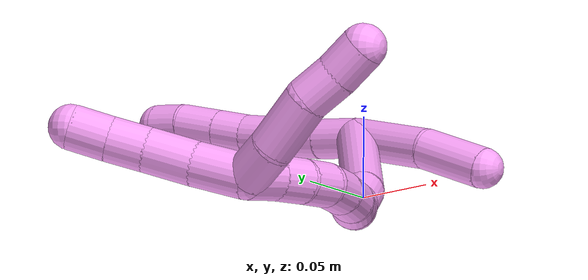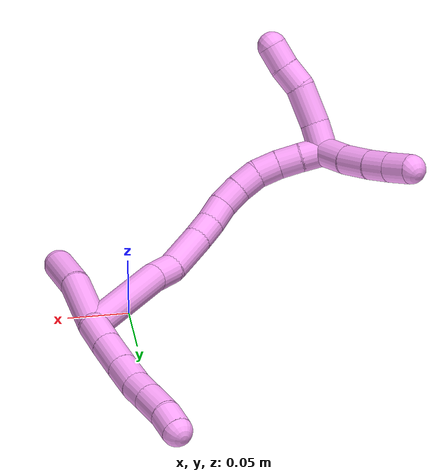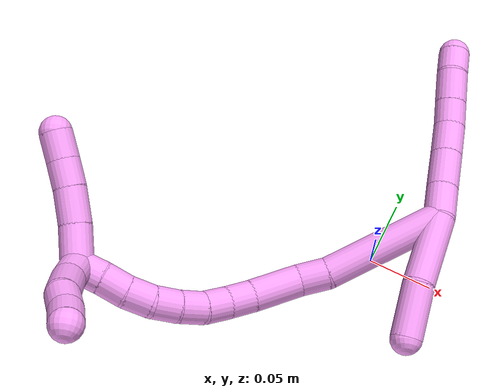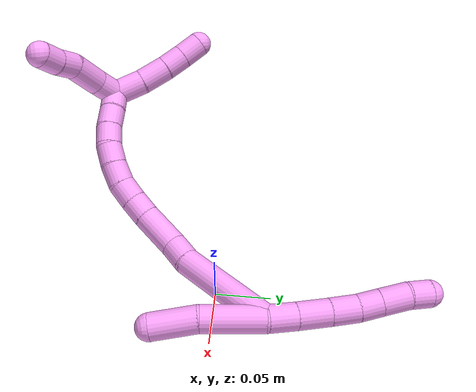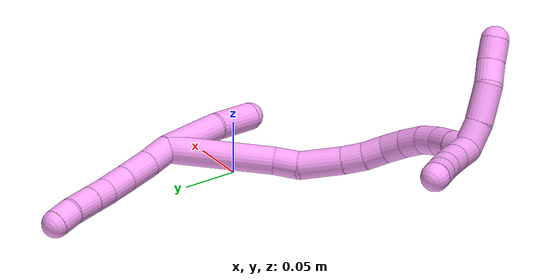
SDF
<sdf version="1.7">
 <world name="default">
  <model name="4">
   <static>0</static>
   <link name="4">
    <collision name="collision-cylinder-e_1_2_8">
     <pose>0.000839 -0.000675 -0.013159 3.09035 0.063578 1.78499</pose>
     <geometry><cylinder><radius>0.0125</radius><length>0.026406</length></cylinder></geometry>
     <surface>
      <friction><ode><mu>1.16</mu><mu2>1.16</mu2><slip1>0</slip1><slip2>0</slip2></ode></friction>
      <contact><ode><kp>1e+06</kp><kd>1</kd><max_vel>0</max_vel><min_depth>0.001</min_depth></ode></contact>
     </surface>
    </collision>
    <visual name="visual-cylinder-e_1_2_8">
     <pose>0.000839 -0.000675 -0.013159 3.09035 0.063578 1.78499</pose>
     <geometry><cylinder><radius>0.0125</radius><length>0.026406</length></cylinder></geometry>
     <material><ambient>1 0.65098 0.996078 1</ambient></material>
    </visual>
    <collision name="collision-cylinder-e_2_8_9">
     <pose>0.00262 -0.001111 -0.041435 -3.12583 0.062253 -2.64575</pose>
     <geometry><cylinder><radius>0.0125</radius><length>0.030296</length></cylinder></geometry>
     <surface>
      <friction><ode><mu>1.16</mu><mu2>1.16</mu2><slip1>0</slip1><slip2>0</slip2></ode></friction>
      <contact><ode><kp>1e+06</kp><kd>1</kd><max_vel>0</max_vel><min_depth>0.001</min_depth></ode></contact>
     </surface>
    </collision>
    <visual name="visual-cylinder-e_2_8_9">
     <pose>0.00262 -0.001111 -0.041435 -3.12583 0.062253 -2.64575</pose>
     <geometry><cylinder><radius>0.0125</radius><length>0.030296</length></cylinder></geometry>
     <material><ambient>1 0.65098 0.996078 1</ambient></material>
    </visual>
    <collision name="collision-cylinder-e_3_9_10">
     <pose>0.004202 -0.000444 -0.069417 -3.10823 0.049647 -1.95819</pose>
     <geometry><cylinder><radius>0.0125</radius><length>0.025776</length></cylinder></geometry>
     <surface>
      <friction><ode><mu>1.16</mu><mu2>1.16</mu2><slip1>0</slip1><slip2>0</slip2></ode></friction>
      <contact><ode><kp>1e+06</kp><kd>1</kd><max_vel>0</max_vel><min_depth>0.001</min_depth></ode></contact>
     </surface>
    </collision>
    <visual name="visual-cylinder-e_3_9_10">
     <pose>0.004202 -0.000444 -0.069417 -3.10823 0.049647 -1.95819</pose>
     <geometry><cylinder><radius>0.0125</radius><length>0.025776</length></cylinder></geometry>
     <material><ambient>1 0.65098 0.996078 1</ambient></material>
    </visual>
    <collision name="collision-cylinder-e_4_10_11">
     <pose>0.004599 0.001296 -0.092543 -3.01463 -0.023426 0.364447</pose>
     <geometry><cylinder><radius>0.0125</radius><length>0.020695</length></cylinder></geometry>
     <surface>
      <friction><ode><mu>1.16</mu><mu2>1.16</mu2><slip1>0</slip1><slip2>0</slip2></ode></friction>
      <contact><ode><kp>1e+06</kp><kd>1</kd><max_vel>0</max_vel><min_depth>0.001</min_depth></ode></contact>
     </surface>
    </collision>
    <visual name="visual-cylinder-e_4_10_11">
     <pose>0.004599 0.001296 -0.092543 -3.01463 -0.023426 0.364447</pose>
     <geometry><cylinder><radius>0.0125</radius><length>0.020695</length></cylinder></geometry>
     <material><ambient>1 0.65098 0.996078 1</ambient></material>
    </visual>
    <collision name="collision-cylinder-e_5_11_12">
     <pose>0.004103 0.004234 -0.11602 -3.01898 -0.019093 0.308589</pose>
     <geometry><cylinder><radius>0.0125</radius><length>0.026635</length></cylinder></geometry>
     <surface>
      <friction><ode><mu>1.16</mu><mu2>1.16</mu2><slip1>0</slip1><slip2>0</slip2></ode></friction>
      <contact><ode><kp>1e+06</kp><kd>1</kd><max_vel>0</max_vel><min_depth>0.001</min_depth></ode></contact>
     </surface>
    </collision>
    <visual name="visual-cylinder-e_5_11_12">
     <pose>0.004103 0.004234 -0.11602 -3.01898 -0.019093 0.308589</pose>
     <geometry><cylinder><radius>0.0125</radius><length>0.026635</length></cylinder></geometry>
     <material><ambient>1 0.65098 0.996078 1</ambient></material>
    </visual>
    <collision name="collision-cylinder-e_6_12_6">
     <pose>0.004415 0.005387 -0.139304 3.0944 0.056114 1.74323</pose>
     <geometry><cylinder><radius>0.0125</radius><length>0.020191</length></cylinder></geometry>
     <surface>
      <friction><ode><mu>1.16</mu><mu2>1.16</mu2><slip1>0</slip1><slip2>0</slip2></ode></friction>
      <contact><ode><kp>1e+06</kp><kd>1</kd><max_vel>0</max_vel><min_depth>0.001</min_depth></ode></contact>
     </surface>
    </collision>
    <visual name="visual-cylinder-e_6_12_6">
     <pose>0.004415 0.005387 -0.139304 3.0944 0.056114 1.74323</pose>
     <geometry><cylinder><radius>0.0125</radius><length>0.020191</length></cylinder></geometry>
     <material><ambient>1 0.65098 0.996078 1</ambient></material>
    </visual>
    <collision name="collision-cylinder-e_1_2_13">
     <pose>-0.006178 -0.002168 0.027925 0.077489 -0.217082 -0.008448</pose>
     <geometry><cylinder><radius>0.0125</radius><length>0.057365</length></cylinder></geometry>
     <surface>
      <friction><ode><mu>1.16</mu><mu2>1.16</mu2><slip1>0</slip1><slip2>0</slip2></ode></friction>
      <contact><ode><kp>1e+06</kp><kd>1</kd><max_vel>0</max_vel><min_depth>0.001</min_depth></ode></contact>
     </surface>
    </collision>
    <visual name="visual-cylinder-e_1_2_13">
     <pose>-0.006178 -0.002168 0.027925 0.077489 -0.217082 -0.008448</pose>
     <geometry><cylinder><radius>0.0125</radius><length>0.057365</length></cylinder></geometry>
     <material><ambient>1 0.65098 0.996078 1</ambient></material>
    </visual>
    <collision name="collision-cylinder-e_2_13_5">
     <pose>-0.014764 -0.009375 0.076424 0.240164 -0.113231 -0.013677</pose>
     <geometry><cylinder><radius>0.0125</radius><length>0.042635</length></cylinder></geometry>
     <surface>
      <friction><ode><mu>1.16</mu><mu2>1.16</mu2><slip1>0</slip1><slip2>0</slip2></ode></friction>
      <contact><ode><kp>1e+06</kp><kd>1</kd><max_vel>0</max_vel><min_depth>0.001</min_depth></ode></contact>
     </surface>
    </collision>
    <visual name="visual-cylinder-e_2_13_5">
     <pose>-0.014764 -0.009375 0.076424 0.240164 -0.113231 -0.013677</pose>
     <geometry><cylinder><radius>0.0125</radius><length>0.042635</length></cylinder></geometry>
     <material><ambient>1 0.65098 0.996078 1</ambient></material>
    </visual>
    <collision name="collision-cylinder-e_1_2_14">
     <pose>-0.039347 -0.012198 0.024921 0.455181 -0.956617 -0.239011</pose>
     <geometry><cylinder><radius>0.0125</radius><length>0.096292</length></cylinder></geometry>
     <surface>
      <friction><ode><mu>1.16</mu><mu2>1.16</mu2><slip1>0</slip1><slip2>0</slip2></ode></friction>
      <contact><ode><kp>1e+06</kp><kd>1</kd><max_vel>0</max_vel><min_depth>0.001</min_depth></ode></contact>
     </surface>
    </collision>
    <visual name="visual-cylinder-e_1_2_14">
     <pose>-0.039347 -0.012198 0.024921 0.455181 -0.956617 -0.239011</pose>
     <geometry><cylinder><radius>0.0125</radius><length>0.096292</length></cylinder></geometry>
     <material><ambient>1 0.65098 0.996078 1</ambient></material>
    </visual>
    <collision name="collision-cylinder-e_2_14_15">
     <pose>-0.089263 -0.026925 0.053614 0.590672 -1.16495 -0.395564</pose>
     <geometry><cylinder><radius>0.0125</radius><length>0.023006</length></cylinder></geometry>
     <surface>
      <friction><ode><mu>1.16</mu><mu2>1.16</mu2><slip1>0</slip1><slip2>0</slip2></ode></friction>
      <contact><ode><kp>1e+06</kp><kd>1</kd><max_vel>0</max_vel><min_depth>0.001</min_depth></ode></contact>
     </surface>
    </collision>
    <visual name="visual-cylinder-e_2_14_15">
     <pose>-0.089263 -0.026925 0.053614 0.590672 -1.16495 -0.395564</pose>
     <geometry><cylinder><radius>0.0125</radius><length>0.023006</length></cylinder></geometry>
     <material><ambient>1 0.65098 0.996078 1</ambient></material>
    </visual>
    <collision name="collision-cylinder-e_3_15_16">
     <pose>-0.117175 -0.028874 0.067022 -0.060093 -1.06289 0.035333</pose>
     <geometry><cylinder><radius>0.0125</radius><length>0.039698</length></cylinder></geometry>
     <surface>
      <friction><ode><mu>1.16</mu><mu2>1.16</mu2><slip1>0</slip1><slip2>0</slip2></ode></friction>
      <contact><ode><kp>1e+06</kp><kd>1</kd><max_vel>0</max_vel><min_depth>0.001</min_depth></ode></contact>
     </surface>
    </collision>
    <visual name="visual-cylinder-e_3_15_16">
     <pose>-0.117175 -0.028874 0.067022 -0.060093 -1.06289 0.035333</pose>
     <geometry><cylinder><radius>0.0125</radius><length>0.039698</length></cylinder></geometry>
     <material><ambient>1 0.65098 0.996078 1</ambient></material>
    </visual>
    <collision name="collision-cylinder-e_4_16_17">
     <pose>-0.143527 -0.027042 0.081375 -0.259625 -1.07431 0.155187</pose>
     <geometry><cylinder><radius>0.0125</radius><length>0.020492</length></cylinder></geometry>
     <surface>
      <friction><ode><mu>1.16</mu><mu2>1.16</mu2><slip1>0</slip1><slip2>0</slip2></ode></friction>
      <contact><ode><kp>1e+06</kp><kd>1</kd><max_vel>0</max_vel><min_depth>0.001</min_depth></ode></contact>
     </surface>
    </collision>
    <visual name="visual-cylinder-e_4_16_17">
     <pose>-0.143527 -0.027042 0.081375 -0.259625 -1.07431 0.155187</pose>
     <geometry><cylinder><radius>0.0125</radius><length>0.020492</length></cylinder></geometry>
     <material><ambient>1 0.65098 0.996078 1</ambient></material>
    </visual>
    <collision name="collision-cylinder-e_5_17_18">
     <pose>-0.161082 -0.023076 0.090625 -0.539281 -1.01715 0.305744</pose>
     <geometry><cylinder><radius>0.0125</radius><length>0.020094</length></cylinder></geometry>
     <surface>
      <friction><ode><mu>1.16</mu><mu2>1.16</mu2><slip1>0</slip1><slip2>0</slip2></ode></friction>
      <contact><ode><kp>1e+06</kp><kd>1</kd><max_vel>0</max_vel><min_depth>0.001</min_depth></ode></contact>
     </surface>
    </collision>
    <visual name="visual-cylinder-e_5_17_18">
     <pose>-0.161082 -0.023076 0.090625 -0.539281 -1.01715 0.305744</pose>
     <geometry><cylinder><radius>0.0125</radius><length>0.020094</length></cylinder></geometry>
     <material><ambient>1 0.65098 0.996078 1</ambient></material>
    </visual>
    <collision name="collision-cylinder-e_6_18_19">
     <pose>-0.179006 -0.017077 0.097387 -0.974749 -1.17021 0.675366</pose>
     <geometry><cylinder><radius>0.0125</radius><length>0.020367</length></cylinder></geometry>
     <surface>
      <friction><ode><mu>1.16</mu><mu2>1.16</mu2><slip1>0</slip1><slip2>0</slip2></ode></friction>
      <contact><ode><kp>1e+06</kp><kd>1</kd><max_vel>0</max_vel><min_depth>0.001</min_depth></ode></contact>
     </surface>
    </collision>
    <visual name="visual-cylinder-e_6_18_19">
     <pose>-0.179006 -0.017077 0.097387 -0.974749 -1.17021 0.675366</pose>
     <geometry><cylinder><radius>0.0125</radius><length>0.020367</length></cylinder></geometry>
     <material><ambient>1 0.65098 0.996078 1</ambient></material>
    </visual>
    <collision name="collision-cylinder-e_7_19_20">
     <pose>-0.197886 -0.010791 0.100473 -1.29262 -1.25367 1.00014</pose>
     <geometry><cylinder><radius>0.0125</radius><length>0.020003</length></cylinder></geometry>
     <surface>
      <friction><ode><mu>1.16</mu><mu2>1.16</mu2><slip1>0</slip1><slip2>0</slip2></ode></friction>
      <contact><ode><kp>1e+06</kp><kd>1</kd><max_vel>0</max_vel><min_depth>0.001</min_depth></ode></contact>
     </surface>
    </collision>
    <visual name="visual-cylinder-e_7_19_20">
     <pose>-0.197886 -0.010791 0.100473 -1.29262 -1.25367 1.00014</pose>
     <geometry><cylinder><radius>0.0125</radius><length>0.020003</length></cylinder></geometry>
     <material><ambient>1 0.65098 0.996078 1</ambient></material>
    </visual>
    <collision name="collision-cylinder-e_8_20_21">
     <pose>-0.217109 -0.005971 0.099763 -2.28129 -1.32851 2.08148</pose>
     <geometry><cylinder><radius>0.0125</radius><length>0.020025</length></cylinder></geometry>
     <surface>
      <friction><ode><mu>1.16</mu><mu2>1.16</mu2><slip1>0</slip1><slip2>0</slip2></ode></friction>
      <contact><ode><kp>1e+06</kp><kd>1</kd><max_vel>0</max_vel><min_depth>0.001</min_depth></ode></contact>
     </surface>
    </collision>
    <visual name="visual-cylinder-e_8_20_21">
     <pose>-0.217109 -0.005971 0.099763 -2.28129 -1.32851 2.08148</pose>
     <geometry><cylinder><radius>0.0125</radius><length>0.020025</length></cylinder></geometry>
     <material><ambient>1 0.65098 0.996078 1</ambient></material>
    </visual>
    <collision name="collision-cylinder-e_9_21_22">
     <pose>-0.236164 -0.002458 0.095016 -2.65254 -1.20254 2.44389</pose>
     <geometry><cylinder><radius>0.0125</radius><length>0.020012</length></cylinder></geometry>
     <surface>
      <friction><ode><mu>1.16</mu><mu2>1.16</mu2><slip1>0</slip1><slip2>0</slip2></ode></friction>
      <contact><ode><kp>1e+06</kp><kd>1</kd><max_vel>0</max_vel><min_depth>0.001</min_depth></ode></contact>
     </surface>
    </collision>
    <visual name="visual-cylinder-e_9_21_22">
     <pose>-0.236164 -0.002458 0.095016 -2.65254 -1.20254 2.44389</pose>
     <geometry><cylinder><radius>0.0125</radius><length>0.020012</length></cylinder></geometry>
     <material><ambient>1 0.65098 0.996078 1</ambient></material>
    </visual>
    <collision name="collision-cylinder-e_10_22_1">
     <pose>-0.255054 0.000189 0.089025 -2.81396 -1.26954 2.7</pose>
     <geometry><cylinder><radius>0.0125</radius><length>0.020011</length></cylinder></geometry>
     <surface>
      <friction><ode><mu>1.16</mu><mu2>1.16</mu2><slip1>0</slip1><slip2>0</slip2></ode></friction>
      <contact><ode><kp>1e+06</kp><kd>1</kd><max_vel>0</max_vel><min_depth>0.001</min_depth></ode></contact>
     </surface>
    </collision>
    <visual name="visual-cylinder-e_10_22_1">
     <pose>-0.255054 0.000189 0.089025 -2.81396 -1.26954 2.7</pose>
     <geometry><cylinder><radius>0.0125</radius><length>0.020011</length></cylinder></geometry>
     <material><ambient>1 0.65098 0.996078 1</ambient></material>
    </visual>
    <collision name="collision-cylinder-e_1_1_23">
     <pose>-0.266215 0.009337 0.095239 -0.737074 -0.131005 0.050653</pose>
     <geometry><cylinder><radius>0.0125</radius><length>0.024588</length></cylinder></geometry>
     <surface>
      <friction><ode><mu>1.16</mu><mu2>1.16</mu2><slip1>0</slip1><slip2>0</slip2></ode></friction>
      <contact><ode><kp>1e+06</kp><kd>1</kd><max_vel>0</max_vel><min_depth>0.001</min_depth></ode></contact>
     </surface>
    </collision>
    <visual name="visual-cylinder-e_1_1_23">
     <pose>-0.266215 0.009337 0.095239 -0.737074 -0.131005 0.050653</pose>
     <geometry><cylinder><radius>0.0125</radius><length>0.024588</length></cylinder></geometry>
     <material><ambient>1 0.65098 0.996078 1</ambient></material>
    </visual>
    <collision name="collision-cylinder-e_2_23_24">
     <pose>-0.267752 0.030337 0.115335 -0.858036 0.004068 -0.001861</pose>
     <geometry><cylinder><radius>0.0125</radius><length>0.033858</length></cylinder></geometry>
     <surface>
      <friction><ode><mu>1.16</mu><mu2>1.16</mu2><slip1>0</slip1><slip2>0</slip2></ode></friction>
      <contact><ode><kp>1e+06</kp><kd>1</kd><max_vel>0</max_vel><min_depth>0.001</min_depth></ode></contact>
     </surface>
    </collision>
    <visual name="visual-cylinder-e_2_23_24">
     <pose>-0.267752 0.030337 0.115335 -0.858036 0.004068 -0.001861</pose>
     <geometry><cylinder><radius>0.0125</radius><length>0.033858</length></cylinder></geometry>
     <material><ambient>1 0.65098 0.996078 1</ambient></material>
    </visual>
    <collision name="collision-cylinder-e_3_24_25">
     <pose>-0.26502 0.049717 0.134177 -0.701941 0.255903 -0.094139</pose>
     <geometry><cylinder><radius>0.0125</radius><length>0.02104</length></cylinder></geometry>
     <surface>
      <friction><ode><mu>1.16</mu><mu2>1.16</mu2><slip1>0</slip1><slip2>0</slip2></ode></friction>
      <contact><ode><kp>1e+06</kp><kd>1</kd><max_vel>0</max_vel><min_depth>0.001</min_depth></ode></contact>
     </surface>
    </collision>
    <visual name="visual-cylinder-e_3_24_25">
     <pose>-0.26502 0.049717 0.134177 -0.701941 0.255903 -0.094139</pose>
     <geometry><cylinder><radius>0.0125</radius><length>0.02104</length></cylinder></geometry>
     <material><ambient>1 0.65098 0.996078 1</ambient></material>
    </visual>
    <collision name="collision-cylinder-e_4_25_4">
     <pose>-0.260955 0.063466 0.149139 -0.784508 0.137165 -0.056818</pose>
     <geometry><cylinder><radius>0.0125</radius><length>0.020513</length></cylinder></geometry>
     <surface>
      <friction><ode><mu>1.16</mu><mu2>1.16</mu2><slip1>0</slip1><slip2>0</slip2></ode></friction>
      <contact><ode><kp>1e+06</kp><kd>1</kd><max_vel>0</max_vel><min_depth>0.001</min_depth></ode></contact>
     </surface>
    </collision>
    <visual name="visual-cylinder-e_4_25_4">
     <pose>-0.260955 0.063466 0.149139 -0.784508 0.137165 -0.056818</pose>
     <geometry><cylinder><radius>0.0125</radius><length>0.020513</length></cylinder></geometry>
     <material><ambient>1 0.65098 0.996078 1</ambient></material>
    </visual>
    <collision name="collision-cylinder-e_1_1_26">
     <pose>-0.267794 0.004489 0.072214 -2.90708 -0.217809 1.49636</pose>
     <geometry><cylinder><radius>0.0125</radius><length>0.029486</length></cylinder></geometry>
     <surface>
      <friction><ode><mu>1.16</mu><mu2>1.16</mu2><slip1>0</slip1><slip2>0</slip2></ode></friction>
      <contact><ode><kp>1e+06</kp><kd>1</kd><max_vel>0</max_vel><min_depth>0.001</min_depth></ode></contact>
     </surface>
    </collision>
    <visual name="visual-cylinder-e_1_1_26">
     <pose>-0.267794 0.004489 0.072214 -2.90708 -0.217809 1.49636</pose>
     <geometry><cylinder><radius>0.0125</radius><length>0.029486</length></cylinder></geometry>
     <material><ambient>1 0.65098 0.996078 1</ambient></material>
    </visual>
    <collision name="collision-cylinder-e_2_26_27">
     <pose>-0.275299 0.011639 0.045665 -2.84717 -0.318187 1.64956</pose>
     <geometry><cylinder><radius>0.0125</radius><length>0.027611</length></cylinder></geometry>
     <surface>
      <friction><ode><mu>1.16</mu><mu2>1.16</mu2><slip1>0</slip1><slip2>0</slip2></ode></friction>
      <contact><ode><kp>1e+06</kp><kd>1</kd><max_vel>0</max_vel><min_depth>0.001</min_depth></ode></contact>
     </surface>
    </collision>
    <visual name="visual-cylinder-e_2_26_27">
     <pose>-0.275299 0.011639 0.045665 -2.84717 -0.318187 1.64956</pose>
     <geometry><cylinder><radius>0.0125</radius><length>0.027611</length></cylinder></geometry>
     <material><ambient>1 0.65098 0.996078 1</ambient></material>
    </visual>
    <collision name="collision-cylinder-e_3_27_28">
     <pose>-0.283751 0.018407 0.023896 -2.83073 -0.403323 1.83369</pose>
     <geometry><cylinder><radius>0.0125</radius><length>0.021059</length></cylinder></geometry>
     <surface>
      <friction><ode><mu>1.16</mu><mu2>1.16</mu2><slip1>0</slip1><slip2>0</slip2></ode></friction>
      <contact><ode><kp>1e+06</kp><kd>1</kd><max_vel>0</max_vel><min_depth>0.001</min_depth></ode></contact>
     </surface>
    </collision>
    <visual name="visual-cylinder-e_3_27_28">
     <pose>-0.283751 0.018407 0.023896 -2.83073 -0.403323 1.83369</pose>
     <geometry><cylinder><radius>0.0125</radius><length>0.021059</length></cylinder></geometry>
     <material><ambient>1 0.65098 0.996078 1</ambient></material>
    </visual>
    <collision name="collision-cylinder-e_4_28_3">
     <pose>-0.292327 0.024733 0.005283 -2.79767 -0.418997 1.77174</pose>
     <geometry><cylinder><radius>0.0125</radius><length>0.021844</length></cylinder></geometry>
     <surface>
      <friction><ode><mu>1.16</mu><mu2>1.16</mu2><slip1>0</slip1><slip2>0</slip2></ode></friction>
      <contact><ode><kp>1e+06</kp><kd>1</kd><max_vel>0</max_vel><min_depth>0.001</min_depth></ode></contact>
     </surface>
    </collision>
    <visual name="visual-cylinder-e_4_28_3">
     <pose>-0.292327 0.024733 0.005283 -2.79767 -0.418997 1.77174</pose>
     <geometry><cylinder><radius>0.0125</radius><length>0.021844</length></cylinder></geometry>
     <material><ambient>1 0.65098 0.996078 1</ambient></material>
    </visual>
    <collision name="collision-sphere-3">
     <pose>-0.296771 0.028097 -0.00411 0 -0 0</pose>
     <geometry><sphere><radius>0.0125</radius></sphere></geometry>
     <surface>
      <friction><ode><mu>1.16</mu><mu2>1.16</mu2><slip1>0</slip1><slip2>0</slip2></ode></friction>
      <contact><ode><kp>1e+06</kp><kd>1</kd><max_vel>0</max_vel><min_depth>0.001</min_depth></ode></contact>
     </surface>
    </collision>
    <visual name="visual-sphere-3">
     <pose>-0.296771 0.028097 -0.00411 0 -0 0</pose>
     <geometry><sphere><radius>0.0125</radius></sphere></geometry>
     <material><ambient>1 0.65098 0.996078 1</ambient></material>
    </visual>
    <collision name="collision-sphere-28">
     <pose>-0.287883 0.021369 0.014676 0 -0 0</pose>
     <geometry><sphere><radius>0.0125</radius></sphere></geometry>
     <surface>
      <friction><ode><mu>1.16</mu><mu2>1.16</mu2><slip1>0</slip1><slip2>0</slip2></ode></friction>
      <contact><ode><kp>1e+06</kp><kd>1</kd><max_vel>0</max_vel><min_depth>0.001</min_depth></ode></contact>
     </surface>
    </collision>
    <visual name="visual-sphere-28">
     <pose>-0.287883 0.021369 0.014676 0 -0 0</pose>
     <geometry><sphere><radius>0.0125</radius></sphere></geometry>
     <material><ambient>1 0.65098 0.996078 1</ambient></material>
    </visual>
    <collision name="collision-sphere-27">
     <pose>-0.279618 0.015444 0.033117 0 -0 0</pose>
     <geometry><sphere><radius>0.0125</radius></sphere></geometry>
     <surface>
      <friction><ode><mu>1.16</mu><mu2>1.16</mu2><slip1>0</slip1><slip2>0</slip2></ode></friction>
      <contact><ode><kp>1e+06</kp><kd>1</kd><max_vel>0</max_vel><min_depth>0.001</min_depth></ode></contact>
     </surface>
    </collision>
    <visual name="visual-sphere-27">
     <pose>-0.279618 0.015444 0.033117 0 -0 0</pose>
     <geometry><sphere><radius>0.0125</radius></sphere></geometry>
     <material><ambient>1 0.65098 0.996078 1</ambient></material>
    </visual>
    <collision name="collision-sphere-26">
     <pose>-0.27098 0.007834 0.058214 0 -0 0</pose>
     <geometry><sphere><radius>0.0125</radius></sphere></geometry>
     <surface>
      <friction><ode><mu>1.16</mu><mu2>1.16</mu2><slip1>0</slip1><slip2>0</slip2></ode></friction>
      <contact><ode><kp>1e+06</kp><kd>1</kd><max_vel>0</max_vel><min_depth>0.001</min_depth></ode></contact>
     </surface>
    </collision>
    <visual name="visual-sphere-26">
     <pose>-0.27098 0.007834 0.058214 0 -0 0</pose>
     <geometry><sphere><radius>0.0125</radius></sphere></geometry>
     <material><ambient>1 0.65098 0.996078 1</ambient></material>
    </visual>
    <collision name="collision-sphere-4">
     <pose>-0.259552 0.070644 0.15633 0 -0 0</pose>
     <geometry><sphere><radius>0.0125</radius></sphere></geometry>
     <surface>
      <friction><ode><mu>1.16</mu><mu2>1.16</mu2><slip1>0</slip1><slip2>0</slip2></ode></friction>
      <contact><ode><kp>1e+06</kp><kd>1</kd><max_vel>0</max_vel><min_depth>0.001</min_depth></ode></contact>
     </surface>
    </collision>
    <visual name="visual-sphere-4">
     <pose>-0.259552 0.070644 0.15633 0 -0 0</pose>
     <geometry><sphere><radius>0.0125</radius></sphere></geometry>
     <material><ambient>1 0.65098 0.996078 1</ambient></material>
    </visual>
    <collision name="collision-sphere-25">
     <pose>-0.262357 0.056288 0.141948 0 -0 0</pose>
     <geometry><sphere><radius>0.0125</radius></sphere></geometry>
     <surface>
      <friction><ode><mu>1.16</mu><mu2>1.16</mu2><slip1>0</slip1><slip2>0</slip2></ode></friction>
      <contact><ode><kp>1e+06</kp><kd>1</kd><max_vel>0</max_vel><min_depth>0.001</min_depth></ode></contact>
     </surface>
    </collision>
    <visual name="visual-sphere-25">
     <pose>-0.262357 0.056288 0.141948 0 -0 0</pose>
     <geometry><sphere><radius>0.0125</radius></sphere></geometry>
     <material><ambient>1 0.65098 0.996078 1</ambient></material>
    </visual>
    <collision name="collision-sphere-24">
     <pose>-0.267683 0.043145 0.126405 0 -0 0</pose>
     <geometry><sphere><radius>0.0125</radius></sphere></geometry>
     <surface>
      <friction><ode><mu>1.16</mu><mu2>1.16</mu2><slip1>0</slip1><slip2>0</slip2></ode></friction>
      <contact><ode><kp>1e+06</kp><kd>1</kd><max_vel>0</max_vel><min_depth>0.001</min_depth></ode></contact>
     </surface>
    </collision>
    <visual name="visual-sphere-24">
     <pose>-0.267683 0.043145 0.126405 0 -0 0</pose>
     <geometry><sphere><radius>0.0125</radius></sphere></geometry>
     <material><ambient>1 0.65098 0.996078 1</ambient></material>
    </visual>
    <collision name="collision-sphere-23">
     <pose>-0.267821 0.017529 0.104264 0 -0 0</pose>
     <geometry><sphere><radius>0.0125</radius></sphere></geometry>
     <surface>
      <friction><ode><mu>1.16</mu><mu2>1.16</mu2><slip1>0</slip1><slip2>0</slip2></ode></friction>
      <contact><ode><kp>1e+06</kp><kd>1</kd><max_vel>0</max_vel><min_depth>0.001</min_depth></ode></contact>
     </surface>
    </collision>
    <visual name="visual-sphere-23">
     <pose>-0.267821 0.017529 0.104264 0 -0 0</pose>
     <geometry><sphere><radius>0.0125</radius></sphere></geometry>
     <material><ambient>1 0.65098 0.996078 1</ambient></material>
    </visual>
    <collision name="collision-sphere-1">
     <pose>-0.264609 0.001145 0.086214 0 -0 0</pose>
     <geometry><sphere><radius>0.0125</radius></sphere></geometry>
     <surface>
      <friction><ode><mu>1.16</mu><mu2>1.16</mu2><slip1>0</slip1><slip2>0</slip2></ode></friction>
      <contact><ode><kp>1e+06</kp><kd>1</kd><max_vel>0</max_vel><min_depth>0.001</min_depth></ode></contact>
     </surface>
    </collision>
    <visual name="visual-sphere-1">
     <pose>-0.264609 0.001145 0.086214 0 -0 0</pose>
     <geometry><sphere><radius>0.0125</radius></sphere></geometry>
     <material><ambient>1 0.65098 0.996078 1</ambient></material>
    </visual>
    <collision name="collision-sphere-22">
     <pose>-0.245499 -0.000766 0.091836 0 -0 0</pose>
     <geometry><sphere><radius>0.0125</radius></sphere></geometry>
     <surface>
      <friction><ode><mu>1.16</mu><mu2>1.16</mu2><slip1>0</slip1><slip2>0</slip2></ode></friction>
      <contact><ode><kp>1e+06</kp><kd>1</kd><max_vel>0</max_vel><min_depth>0.001</min_depth></ode></contact>
     </surface>
    </collision>
    <visual name="visual-sphere-22">
     <pose>-0.245499 -0.000766 0.091836 0 -0 0</pose>
     <geometry><sphere><radius>0.0125</radius></sphere></geometry>
     <material><ambient>1 0.65098 0.996078 1</ambient></material>
    </visual>
    <collision name="collision-sphere-21">
     <pose>-0.226829 -0.00415 0.098196 0 -0 0</pose>
     <geometry><sphere><radius>0.0125</radius></sphere></geometry>
     <surface>
      <friction><ode><mu>1.16</mu><mu2>1.16</mu2><slip1>0</slip1><slip2>0</slip2></ode></friction>
      <contact><ode><kp>1e+06</kp><kd>1</kd><max_vel>0</max_vel><min_depth>0.001</min_depth></ode></contact>
     </surface>
    </collision>
    <visual name="visual-sphere-21">
     <pose>-0.226829 -0.00415 0.098196 0 -0 0</pose>
     <geometry><sphere><radius>0.0125</radius></sphere></geometry>
     <material><ambient>1 0.65098 0.996078 1</ambient></material>
    </visual>
    <collision name="collision-sphere-12">
     <pose>0.003848 0.005862 -0.129235 0 -0 0</pose>
     <geometry><sphere><radius>0.0125</radius></sphere></geometry>
     <surface>
      <friction><ode><mu>1.16</mu><mu2>1.16</mu2><slip1>0</slip1><slip2>0</slip2></ode></friction>
      <contact><ode><kp>1e+06</kp><kd>1</kd><max_vel>0</max_vel><min_depth>0.001</min_depth></ode></contact>
     </surface>
    </collision>
    <visual name="visual-sphere-12">
     <pose>0.003848 0.005862 -0.129235 0 -0 0</pose>
     <geometry><sphere><radius>0.0125</radius></sphere></geometry>
     <material><ambient>1 0.65098 0.996078 1</ambient></material>
    </visual>
    <collision name="collision-sphere-11">
     <pose>0.004357 0.002605 -0.102805 0 -0 0</pose>
     <geometry><sphere><radius>0.0125</radius></sphere></geometry>
     <surface>
      <friction><ode><mu>1.16</mu><mu2>1.16</mu2><slip1>0</slip1><slip2>0</slip2></ode></friction>
      <contact><ode><kp>1e+06</kp><kd>1</kd><max_vel>0</max_vel><min_depth>0.001</min_depth></ode></contact>
     </surface>
    </collision>
    <visual name="visual-sphere-11">
     <pose>0.004357 0.002605 -0.102805 0 -0 0</pose>
     <geometry><sphere><radius>0.0125</radius></sphere></geometry>
     <material><ambient>1 0.65098 0.996078 1</ambient></material>
    </visual>
    <collision name="collision-sphere-10">
     <pose>0.004842 -1.4e-05 -0.082282 0 -0 0</pose>
     <geometry><sphere><radius>0.0125</radius></sphere></geometry>
     <surface>
      <friction><ode><mu>1.16</mu><mu2>1.16</mu2><slip1>0</slip1><slip2>0</slip2></ode></friction>
      <contact><ode><kp>1e+06</kp><kd>1</kd><max_vel>0</max_vel><min_depth>0.001</min_depth></ode></contact>
     </surface>
    </collision>
    <visual name="visual-sphere-10">
     <pose>0.004842 -1.4e-05 -0.082282 0 -0 0</pose>
     <geometry><sphere><radius>0.0125</radius></sphere></geometry>
     <material><ambient>1 0.65098 0.996078 1</ambient></material>
    </visual>
    <collision name="collision-sphere-9">
     <pose>0.003563 -0.000873 -0.056552 0 -0 0</pose>
     <geometry><sphere><radius>0.0125</radius></sphere></geometry>
     <surface>
      <friction><ode><mu>1.16</mu><mu2>1.16</mu2><slip1>0</slip1><slip2>0</slip2></ode></friction>
      <contact><ode><kp>1e+06</kp><kd>1</kd><max_vel>0</max_vel><min_depth>0.001</min_depth></ode></contact>
     </surface>
    </collision>
    <visual name="visual-sphere-9">
     <pose>0.003563 -0.000873 -0.056552 0 -0 0</pose>
     <geometry><sphere><radius>0.0125</radius></sphere></geometry>
     <material><ambient>1 0.65098 0.996078 1</ambient></material>
    </visual>
    <collision name="collision-sphere-2">
     <geometry><sphere><radius>0.0125</radius></sphere></geometry>
     <surface>
      <friction><ode><mu>1.16</mu><mu2>1.16</mu2><slip1>0</slip1><slip2>0</slip2></ode></friction>
      <contact><ode><kp>1e+06</kp><kd>1</kd><max_vel>0</max_vel><min_depth>0.001</min_depth></ode></contact>
     </surface>
    </collision>
    <visual name="visual-sphere-2">
     <geometry><sphere><radius>0.0125</radius></sphere></geometry>
     <material><ambient>1 0.65098 0.996078 1</ambient></material>
    </visual>
    <collision name="collision-sphere-19">
     <pose>-0.188383 -0.01379 0.099616 0 -0 0</pose>
     <geometry><sphere><radius>0.0125</radius></sphere></geometry>
     <surface>
      <friction><ode><mu>1.16</mu><mu2>1.16</mu2><slip1>0</slip1><slip2>0</slip2></ode></friction>
      <contact><ode><kp>1e+06</kp><kd>1</kd><max_vel>0</max_vel><min_depth>0.001</min_depth></ode></contact>
     </surface>
    </collision>
    <visual name="visual-sphere-19">
     <pose>-0.188383 -0.01379 0.099616 0 -0 0</pose>
     <geometry><sphere><radius>0.0125</radius></sphere></geometry>
     <material><ambient>1 0.65098 0.996078 1</ambient></material>
    </visual>
    <collision name="collision-sphere-8">
     <pose>0.001678 -0.00135 -0.026319 0 -0 0</pose>
     <geometry><sphere><radius>0.0125</radius></sphere></geometry>
     <surface>
      <friction><ode><mu>1.16</mu><mu2>1.16</mu2><slip1>0</slip1><slip2>0</slip2></ode></friction>
      <contact><ode><kp>1e+06</kp><kd>1</kd><max_vel>0</max_vel><min_depth>0.001</min_depth></ode></contact>
     </surface>
    </collision>
    <visual name="visual-sphere-8">
     <pose>0.001678 -0.00135 -0.026319 0 -0 0</pose>
     <geometry><sphere><radius>0.0125</radius></sphere></geometry>
     <material><ambient>1 0.65098 0.996078 1</ambient></material>
    </visual>
    <collision name="collision-sphere-6">
     <pose>0.004981 0.004911 -0.149372 0 -0 0</pose>
     <geometry><sphere><radius>0.0125</radius></sphere></geometry>
     <surface>
      <friction><ode><mu>1.16</mu><mu2>1.16</mu2><slip1>0</slip1><slip2>0</slip2></ode></friction>
      <contact><ode><kp>1e+06</kp><kd>1</kd><max_vel>0</max_vel><min_depth>0.001</min_depth></ode></contact>
     </surface>
    </collision>
    <visual name="visual-sphere-6">
     <pose>0.004981 0.004911 -0.149372 0 -0 0</pose>
     <geometry><sphere><radius>0.0125</radius></sphere></geometry>
     <material><ambient>1 0.65098 0.996078 1</ambient></material>
    </visual>
    <collision name="collision-sphere-13">
     <pose>-0.012355 -0.004337 0.055851 0 -0 0</pose>
     <geometry><sphere><radius>0.0125</radius></sphere></geometry>
     <surface>
      <friction><ode><mu>1.16</mu><mu2>1.16</mu2><slip1>0</slip1><slip2>0</slip2></ode></friction>
      <contact><ode><kp>1e+06</kp><kd>1</kd><max_vel>0</max_vel><min_depth>0.001</min_depth></ode></contact>
     </surface>
    </collision>
    <visual name="visual-sphere-13">
     <pose>-0.012355 -0.004337 0.055851 0 -0 0</pose>
     <geometry><sphere><radius>0.0125</radius></sphere></geometry>
     <material><ambient>1 0.65098 0.996078 1</ambient></material>
    </visual>
    <collision name="collision-sphere-5">
     <pose>-0.017173 -0.014413 0.096997 0 -0 0</pose>
     <geometry><sphere><radius>0.0125</radius></sphere></geometry>
     <surface>
      <friction><ode><mu>1.16</mu><mu2>1.16</mu2><slip1>0</slip1><slip2>0</slip2></ode></friction>
      <contact><ode><kp>1e+06</kp><kd>1</kd><max_vel>0</max_vel><min_depth>0.001</min_depth></ode></contact>
     </surface>
    </collision>
    <visual name="visual-sphere-5">
     <pose>-0.017173 -0.014413 0.096997 0 -0 0</pose>
     <geometry><sphere><radius>0.0125</radius></sphere></geometry>
     <material><ambient>1 0.65098 0.996078 1</ambient></material>
    </visual>
    <collision name="collision-sphere-14">
     <pose>-0.078695 -0.024396 0.049842 0 -0 0</pose>
     <geometry><sphere><radius>0.0125</radius></sphere></geometry>
     <surface>
      <friction><ode><mu>1.16</mu><mu2>1.16</mu2><slip1>0</slip1><slip2>0</slip2></ode></friction>
      <contact><ode><kp>1e+06</kp><kd>1</kd><max_vel>0</max_vel><min_depth>0.001</min_depth></ode></contact>
     </surface>
    </collision>
    <visual name="visual-sphere-14">
     <pose>-0.078695 -0.024396 0.049842 0 -0 0</pose>
     <geometry><sphere><radius>0.0125</radius></sphere></geometry>
     <material><ambient>1 0.65098 0.996078 1</ambient></material>
    </visual>
    <collision name="collision-sphere-15">
     <pose>-0.099832 -0.029454 0.057386 0 -0 0</pose>
     <geometry><sphere><radius>0.0125</radius></sphere></geometry>
     <surface>
      <friction><ode><mu>1.16</mu><mu2>1.16</mu2><slip1>0</slip1><slip2>0</slip2></ode></friction>
      <contact><ode><kp>1e+06</kp><kd>1</kd><max_vel>0</max_vel><min_depth>0.001</min_depth></ode></contact>
     </surface>
    </collision>
    <visual name="visual-sphere-15">
     <pose>-0.099832 -0.029454 0.057386 0 -0 0</pose>
     <geometry><sphere><radius>0.0125</radius></sphere></geometry>
     <material><ambient>1 0.65098 0.996078 1</ambient></material>
    </visual>
    <collision name="collision-sphere-16">
     <pose>-0.134519 -0.028294 0.076658 0 -0 0</pose>
     <geometry><sphere><radius>0.0125</radius></sphere></geometry>
     <surface>
      <friction><ode><mu>1.16</mu><mu2>1.16</mu2><slip1>0</slip1><slip2>0</slip2></ode></friction>
      <contact><ode><kp>1e+06</kp><kd>1</kd><max_vel>0</max_vel><min_depth>0.001</min_depth></ode></contact>
     </surface>
    </collision>
    <visual name="visual-sphere-16">
     <pose>-0.134519 -0.028294 0.076658 0 -0 0</pose>
     <geometry><sphere><radius>0.0125</radius></sphere></geometry>
     <material><ambient>1 0.65098 0.996078 1</ambient></material>
    </visual>
    <collision name="collision-sphere-17">
     <pose>-0.152536 -0.025789 0.086092 0 -0 0</pose>
     <geometry><sphere><radius>0.0125</radius></sphere></geometry>
     <surface>
      <friction><ode><mu>1.16</mu><mu2>1.16</mu2><slip1>0</slip1><slip2>0</slip2></ode></friction>
      <contact><ode><kp>1e+06</kp><kd>1</kd><max_vel>0</max_vel><min_depth>0.001</min_depth></ode></contact>
     </surface>
    </collision>
    <visual name="visual-sphere-17">
     <pose>-0.152536 -0.025789 0.086092 0 -0 0</pose>
     <geometry><sphere><radius>0.0125</radius></sphere></geometry>
     <material><ambient>1 0.65098 0.996078 1</ambient></material>
    </visual>
    <collision name="collision-sphere-18">
     <pose>-0.169629 -0.020363 0.095158 0 -0 0</pose>
     <geometry><sphere><radius>0.0125</radius></sphere></geometry>
     <surface>
      <friction><ode><mu>1.16</mu><mu2>1.16</mu2><slip1>0</slip1><slip2>0</slip2></ode></friction>
      <contact><ode><kp>1e+06</kp><kd>1</kd><max_vel>0</max_vel><min_depth>0.001</min_depth></ode></contact>
     </surface>
    </collision>
    <visual name="visual-sphere-18">
     <pose>-0.169629 -0.020363 0.095158 0 -0 0</pose>
     <geometry><sphere><radius>0.0125</radius></sphere></geometry>
     <material><ambient>1 0.65098 0.996078 1</ambient></material>
    </visual>
    <collision name="collision-sphere-20">
     <pose>-0.207389 -0.007792 0.101329 0 -0 0</pose>
     <geometry><sphere><radius>0.0125</radius></sphere></geometry>
     <surface>
      <friction><ode><mu>1.16</mu><mu2>1.16</mu2><slip1>0</slip1><slip2>0</slip2></ode></friction>
      <contact><ode><kp>1e+06</kp><kd>1</kd><max_vel>0</max_vel><min_depth>0.001</min_depth></ode></contact>
     </surface>
    </collision>
    <visual name="visual-sphere-20">
     <pose>-0.207389 -0.007792 0.101329 0 -0 0</pose>
     <geometry><sphere><radius>0.0125</radius></sphere></geometry>
     <material><ambient>1 0.65098 0.996078 1</ambient></material>
    </visual>
    <inertial>
     <pose>-0.124444 -5.2e-05 0.038992 0 -0 0</pose>
     <mass>0.75</mass>
     <inertia><ixx>6e-05</ixx><ixy>0</ixy><ixz>0</ixz><iyy>0.000136</iyy><iyz>0</iyz><izz>0.0001</izz></inertia>
    </inertial>
   </link>
   <pose>0.034738 0.04773 0.022437 1.46677 0.132552 0.336443</pose>
  </model>
 </world>
</sdf>
